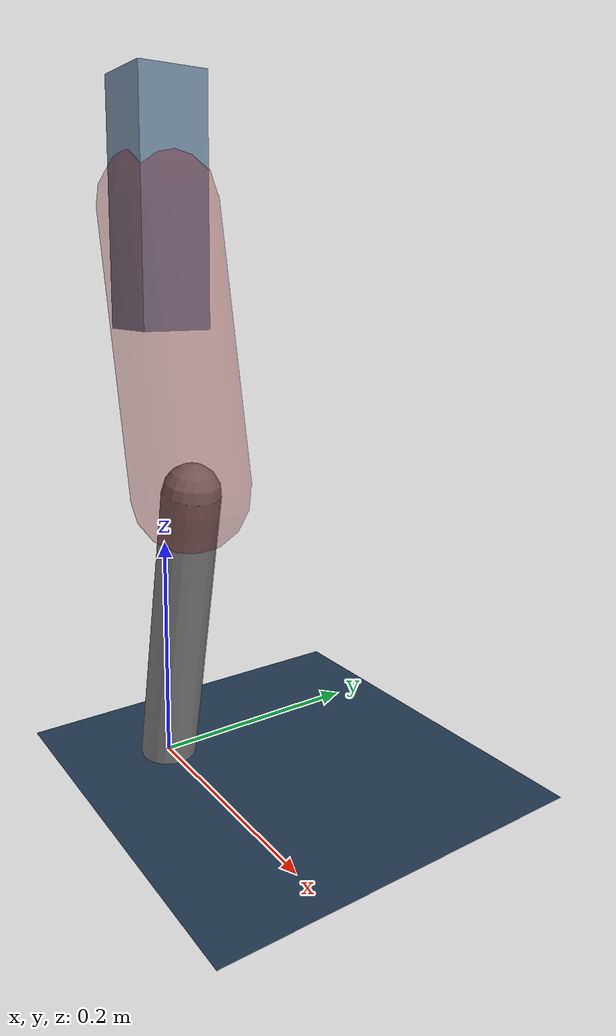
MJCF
<mujoco model="Hopper2D">
	<compiler inertiafromgeom="true" angle="radian" />
	<option timestep="0.001" integrator="implicit" cone="elliptic" solver="Newton" tolerance="1e-10" />

	<default>
		<geom contype="1" conaffinity="1" condim="3" friction="2 0.005 0.0001" solref="0.005 1" />
		<joint limited="true" damping="0.1" />
	</default>

	<asset>
		<texture name="skybox" type="skybox" builtin="gradient" rgb1=".4 .6 .8" rgb2="0 0 0" width="800" height="800" />
		<texture name="grid" type="2d" builtin="checker" rgb1=".1 .2 .3" rgb2=".2 .3 .4" width="300" height="300" mark="edge" markrgb=".2 .3 .4" />
		<material name="ground" texture="grid" texrepeat="1 1" texuniform="true" reflectance="0.1" />
		<material name="leg" rgba="0.5 0.6 0.7 1" />
	</asset>

	<worldbody>

		<geom name="floor" type="plane" size="5 5 0.25" material="ground" />

		<light directional="false" diffuse="0.8 0.8 0.8" specular="0.3 0.3 0.3" pos="0 0 2" dir="0 0 -1" />
		<light mode="targetbodycom" target="base" directional="false" diffuse="0.8 0.8 0.8" specular="0.3 0.3 0.3" pos="0 0 2" dir="0 0 -1" />

		<camera name="fixed" pos="0 -2 1" xyaxes="1 0 0 0 0 1" />
		<camera name="tracking" mode="trackcom" pos="0 -3 1" />

		<body name="root" pos="0 0 0.4863772561613034">
			<joint name="slide_x" type="slide" axis="1 0 0" range="-100 100" />
			<joint name="slide_z" type="slide" axis="0 0 1" range="0 10" />

			<body name="base" pos="0 0 0">
				<geom name="torso" type="box" size="0.03 0.03 0.1" mass="3.453" material="leg" />

				<body name="link1" pos="0 0 0" euler="0 1.3594784227555803 0">
					<joint type="hinge" axis="0 -1 0" pos="0 0 0" name="hinge1" limited="true" range="-3.14 3.14" stiffness="0" damping="0.1" />
					<geom name="thigh" type="capsule" fromto="0 0 0 0.2360200776421037 0 0" size="0.05" rgba="0.5 0 0 0.3" mass="0.8203522018694697" />

					<body name="link2" pos="0.2360200776421037 0 0" euler="0 0.40262493208761246 0">
						<joint type="hinge" axis="0 -1 0" pos="0 0 0" name="hinge2" limited="true" range="-3.14 3.14" stiffness="0" damping="0.1" />
						<geom name="shank" type="capsule" fromto="0 0 0 0.2603571785191997 0 0" size="0.025" mass="0.4510214606672797" />

					</body>
				</body>
			</body>
		</body>
	</worldbody>

	<actuator>
		<motor name="torque1" joint="hinge1" ctrlrange="-186.32598379124065 186.32598379124065" ctrllimited="true" gear="1" />
		<motor name="torque2" joint="hinge2" ctrlrange="-121.36613152222813 121.36613152222813" ctrllimited="true" gear="1" />
	</actuator>
</mujoco>
